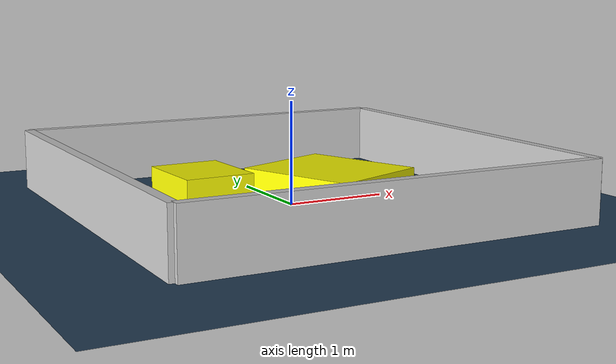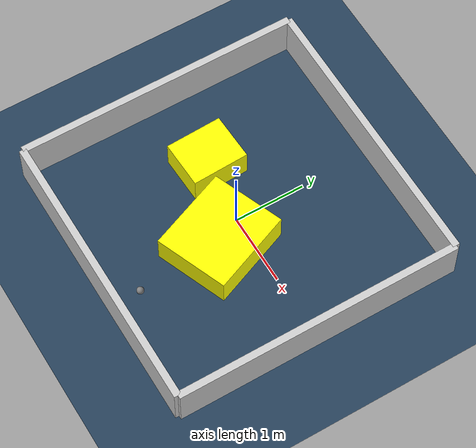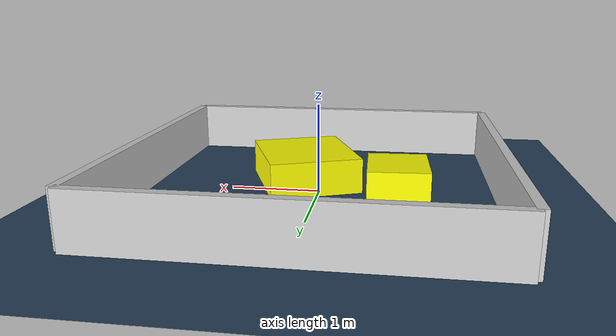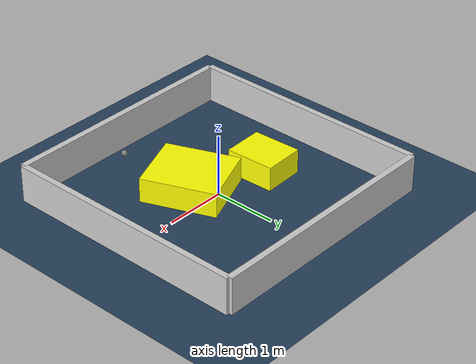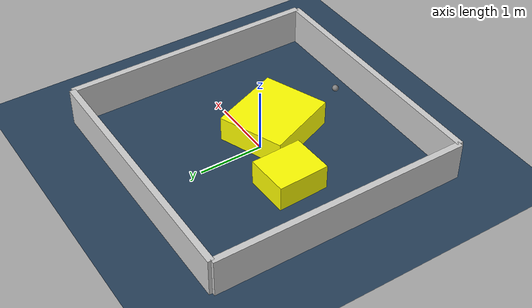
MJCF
<?xml version="1.0" ?>
<mujoco model="generated_environment">
  <option timestep="0.01" integrator="RK4" cone="elliptic"/>
  <default>
    <geom density="1"/>
  </default>
  <asset>
    <texture builtin="gradient" height="3072" rgb1="0.3 0.5 0.7" rgb2="0 0 0" type="skybox" width="512"/>
    <texture builtin="checker" height="300" mark="edge" markrgb="0.8 0.8 0.8" name="groundplane" rgb1="0.2 0.3 0.4" rgb2="0.1 0.2 0.3" type="2d" width="300"/>
    <material name="groundplane" reflectance="0.2" texrepeat="5 5" texture="groundplane" texuniform="true"/>
    <material name="robot" rgba="0.0 1.0 0.0 1"/>
  </asset>
  <worldbody>
    <light dir="0 0 -1" directional="true" pos="0 0 1.5"/>
    <geom condim="4" friction="1.0 0.005 0.001" material="groundplane" name="floor" size="0 0 0.05" type="plane"/>
    <body name="walls">
      <geom name="wall_1" condim="4" pos="-2.0 0.0 0.3" rgba="0.800000011920929 0.800000011920929 0.800000011920929 1.0" size="0.05 2.0 0.3" type="box"/>
      <geom name="wall_2" condim="4" pos="2.0 0.0 0.3" rgba="0.800000011920929 0.800000011920929 0.800000011920929 1.0" size="0.05 2.0 0.3" type="box"/>
      <geom name="wall_3" condim="4" pos="0.0 -2.0 0.3" rgba="0.800000011920929 0.800000011920929 0.800000011920929 1.0" size="2.0 0.05 0.3" type="box"/>
      <geom name="wall_4" condim="4" pos="0.0 2.0 0.3" rgba="0.800000011920929 0.800000011920929 0.800000011920929 1.0" size="2.0 0.05 0.3" type="box"/>
    </body>
    <body name="robot">
      <joint name="joint_x" type="slide" pos="0 0 0" axis="1 0 0"/>
      <joint name="joint_y" type="slide" pos="0 0 0" axis="0 1 0"/>
      <geom name="robot" type="sphere" pos="0.3497297929703729 -1.6057562907705634 0.2" size="0.05" mass="5." friction="1.0 0.005 0.0001" condim="4"/>
      <site name="sensor_ball"/>
    </body>
    <body name="obstacle_1_movable">
      <geom name="obstacle_1_movable" condim="4" pos="-0.8920512522219327 0.08937595015316169 0.2" euler="0 0 2.338970387269268" friction="1.0 0.005 0.001" rgba="1 1 0 1" size="0.33537976093760163 0.39805941767134634 0.2" type="box" mass="0.1"/>
      <joint type="free"/>
    </body>
    <body name="obstacle_2_movable">
      <geom name="obstacle_2_movable" condim="4" pos="0.20993653419385527 -0.3684194739669808 0.2" euler="0 0 201.86524955185394" friction="1.0 0.005 0.001" rgba="1 1 0 1" size="0.5245509799407501 0.5993692340944728 0.2" type="box" mass="0.1"/>
      <joint type="free"/>
    </body>
  </worldbody>
  <actuator>
    <motor name="actuator_x" joint="joint_x" gear="1" ctrlrange="-1 1"/>
    <motor name="actuator_y" joint="joint_y" gear="1" ctrlrange="-1 1"/>
  </actuator>
</mujoco>
